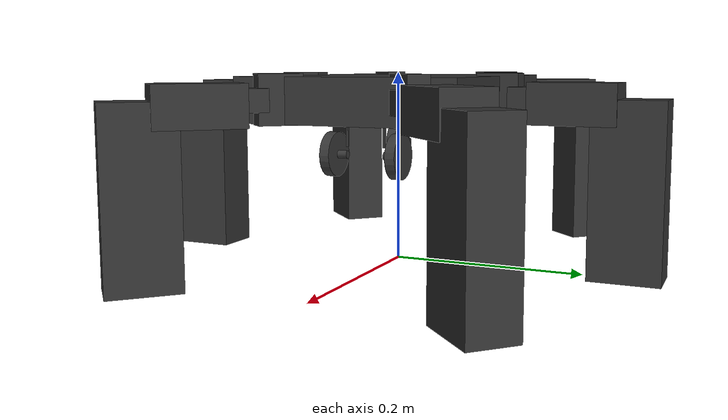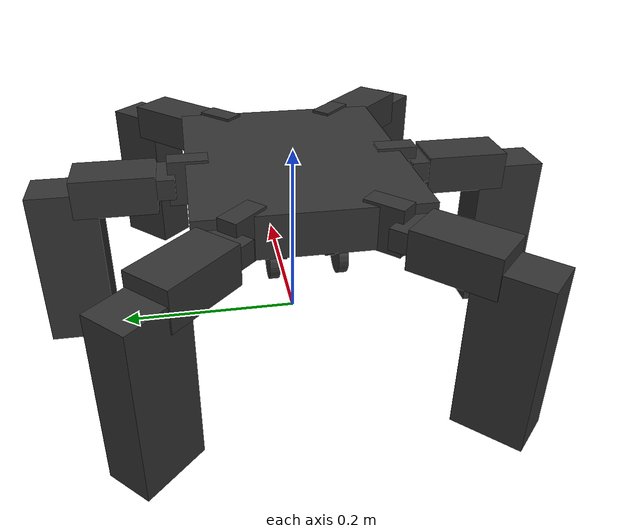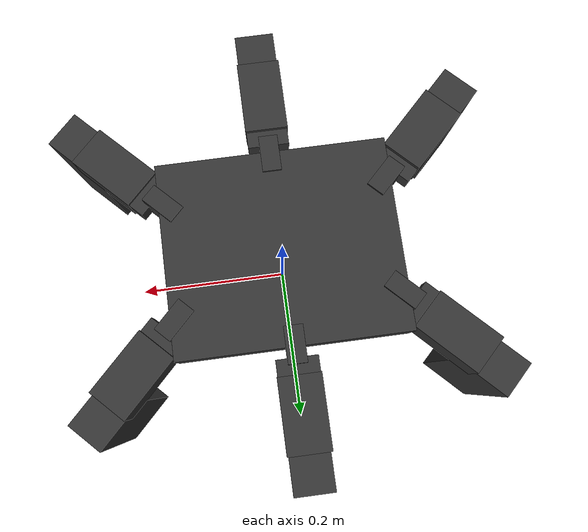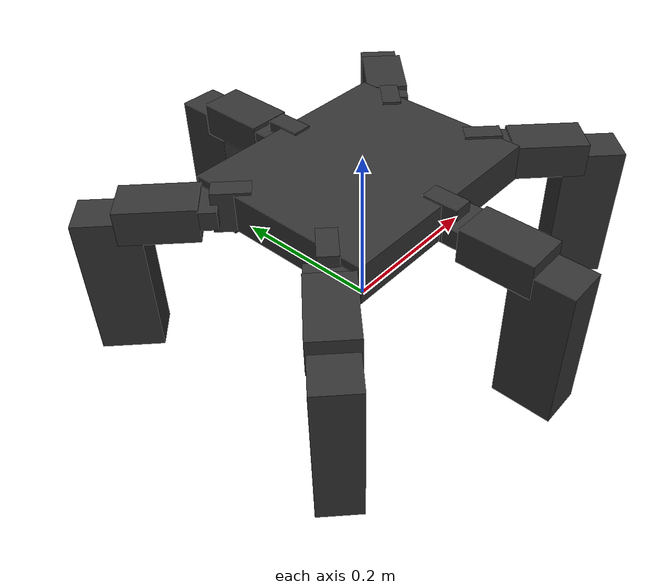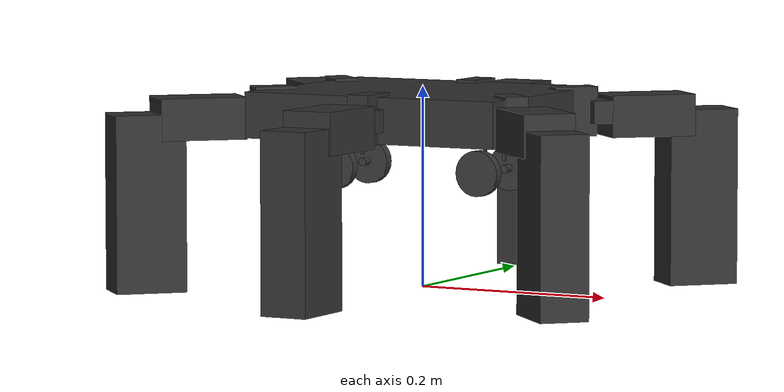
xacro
<?xml version="1.0" ?>
<robot name="PhantomX"  xmlns:xacro="http://www.ros.org/wiki/xacro">

  <xacro:include filename="./phantomx_boxes.urdf.xacro" />

  <!-- Ground projection (z=0, on the floor) -->
  <link name="base_footprint"/>

  <!-- Body base frame, raised to robot body height above ground -->
  <joint name="j_base_footprint_to_base_link" type="fixed">
    <parent link="base_footprint"/>
    <child link="base_link"/>
    <origin xyz="0 0 0.174" rpy="0 0 0" />
  </joint>
  <link name="base_link"/>

  <xacro:phantomx parent="base_link">
    <origin xyz="0 0 0" rpy="0 0 0" />
  </xacro:phantomx>

  <!-- Wheel assembly v2 - axle + tire + rim, Y=+-70mm, no comment colons -->
  <xacro:include filename="./wheel.xacro" />

</robot>

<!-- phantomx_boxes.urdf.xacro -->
<robot xmlns:xacro="http://www.ros.org/wiki/xacro">

<!-- ========== Collision box half-extents (meters) ========== -->
<xacro:property name="body_box_x" value="0.1368" />
<xacro:property name="body_box_y" value="0.1150" />
<xacro:property name="body_box_z" value="0.0228" />

<xacro:property name="coxa_box_x" value="0.0247" />
<xacro:property name="coxa_box_y" value="0.0216" />
<xacro:property name="coxa_box_z" value="0.0112" />

<xacro:property name="femur_box_x" value="0.0255" />
<xacro:property name="femur_box_y" value="0.0435" />
<xacro:property name="femur_box_z" value="0.0208" />

<xacro:property name="tibia_box_x" value="0.0240" />
<xacro:property name="tibia_box_y" value="0.0877" />
<xacro:property name="tibia_box_z" value="0.0353" />

<!-- ========== Collision box center offsets in link frame (meters) ========== -->
<!-- Body - STL center at (-0.2, 0.1, -0.6)mm ≈ (0, 0, 0) -->
<xacro:property name="body_col_ox" value="0.0" />
<xacro:property name="body_col_oy" value="0.0" />
<xacro:property name="body_col_oz" value="0.0" />

<!-- Coxa/Connect - STL center at (0.1, 16.1, -0.1)mm in STL coords
     Visual origin at (0, -0.0252, 0) maps STL→link frame
     Link-frame center ≈ (0, -0.009, 0) -->
<xacro:property name="coxa_col_ox" value="0.0" />
<xacro:property name="coxa_col_oy" value="-0.0091" />
<xacro:property name="coxa_col_oz" value="0.0" />

<!-- Femur/Thigh - STL center at (1.1, -32.0, -4.8)mm ≈ (0, -0.032, -0.005)m -->
<xacro:property name="femur_col_ox" value="0.0" />
<xacro:property name="femur_col_oy" value="-0.0320" />
<xacro:property name="femur_col_oz" value="-0.0048" />

<!-- Tibia/Foot - STL center at (-0.9, 72.9, 21.0)mm ≈ (0, 0.073, 0.021)m -->
<xacro:property name="tibia_col_ox" value="0.0" />
<xacro:property name="tibia_col_oy" value="0.0729" />
<xacro:property name="tibia_col_oz" value="0.0210" />

<!-- ========== Joint link offsets (keep original) ========== -->
<xacro:property name="connect_offset" value="0.02633" />
<xacro:property name="thigh_offset_y" value="-0.0645" />
<xacro:property name="thigh_offset_z" value="-0.0145" />

<xacro:macro name="phantomx" params="parent *origin">

  <joint name="j_phantomx_attachment" type="fixed">
    <parent link="${parent}"/>
    <child link="MP_BODY"/>
    <insert_block name="origin" />
  </joint>

  <link name="MP_BODY">
    <inertial>
      <origin xyz="${body_col_ox} ${body_col_oy} ${body_col_oz}" rpy="0 0 0" />
      <mass value="0.976" />
      <!-- Box inertia - m/12 * diag(dy²+dz², dx²+dz², dx²+dy²) -->
      <inertia ixx="0.004471" ixy="0.0" ixz="0.0"
               iyy="0.006252" iyz="0.0"
               izz="0.010386" />
    </inertial>
    <visual>
      <origin xyz="${body_col_ox} ${body_col_oy} ${body_col_oz}" rpy="0 0 0" />
      <geometry>
        <box size="${body_box_x*2} ${body_box_y*2} ${body_box_z*2}" />
      </geometry>
      <material name="Grey">
        <color rgba="0.20 0.20 0.20 1.0"/>
      </material>
    </visual>
    <collision>
      <origin xyz="${body_col_ox} ${body_col_oy} ${body_col_oz}" rpy="0 0 0" />
      <geometry>
        <box size="${body_box_x*2} ${body_box_y*2} ${body_box_z*2}" />
      </geometry>
    </collision>
  </link>

  <!-- ===== 6 LEGS ===== -->
  <!-- Right side -->
  <xacro:leg xyz="0.1248 -0.06164  0.001116"  rpy="0 4.7123 0.7853981633974483" suffix="rf"/>
  <xacro:leg xyz="0 -0.1034  0.001116"  rpy="0 4.7123 0" suffix="rm"/>
  <xacro:leg xyz="-0.1248 -0.06164  0.001116"  rpy="0 4.7123 -0.7853981633974483" suffix="rr"/>

  <!-- Left side -->
  <xacro:leg xyz="0.1248 0.06164  0.001116"  rpy="0 4.7123 2.356194490192345" suffix="lf"/>
  <xacro:leg xyz="0 0.1034  0.001116"  rpy="0 4.7123 3.14159" suffix="lm"/>
  <xacro:leg xyz="-0.1248 0.06164  0.001116"  rpy="0 4.7123 3.9269908169872414" suffix="lr"/>

</xacro:macro>

<!-- ===== SINGLE LEG MACRO =====
     Each leg - c1 (coxa) → c2 (coxa extender) → thigh (femur) → tibia (foot)
     3 revolute joints (all rotate around local X axis) + 1 fixed joint (c1→c2) -->
<xacro:macro name="leg" params="xyz rpy suffix">

  <!-- ===== c1 - Coxa bracket =====
       Box - 49.4 × 43.2 × 22.5 mm, mass 30g
       I = m/12 * diag(dy²+dz², dx²+dz², dx²+dy²) -->
  <link name="c1_${suffix}">
    <inertial>
      <origin xyz="${coxa_col_ox} ${coxa_col_oy} ${coxa_col_oz}" rpy="0 0 0" />
      <mass value="0.030" />
      <inertia ixx="0.00000593" ixy="0.0" ixz="0.0"
               iyy="0.00000737" iyz="0.0"
               izz="0.00001077" />
    </inertial>
    <visual>
      <origin xyz="${coxa_col_ox} ${coxa_col_oy} ${coxa_col_oz}" rpy="0 0 0" />
      <geometry>
        <box size="${coxa_box_x*2} ${coxa_box_y*2} ${coxa_box_z*2}" />
      </geometry>
      <material name="Grey">
        <color rgba="0.20 0.20 0.20 1.0"/>
      </material>
    </visual>
    <collision>
      <origin xyz="${coxa_col_ox} ${coxa_col_oy} ${coxa_col_oz}" rpy="0 0 0" />
      <geometry>
        <box size="${coxa_box_x*2} ${coxa_box_y*2} ${coxa_box_z*2}" />
      </geometry>
    </collision>
  </link>

  <!-- ===== c2 - Coxa extender (fixed to c1) =====
       Same geometry and mass as c1 -->
  <link name="c2_${suffix}">
    <inertial>
      <origin xyz="${coxa_col_ox} ${coxa_col_oy} ${coxa_col_oz}" rpy="0 0 0" />
      <mass value="0.030" />
      <inertia ixx="0.00000593" ixy="0.0" ixz="0.0"
               iyy="0.00000737" iyz="0.0"
               izz="0.00001077" />
    </inertial>
    <visual>
      <origin xyz="${coxa_col_ox} ${coxa_col_oy} ${coxa_col_oz}" rpy="0 0 0" />
      <geometry>
        <box size="${coxa_box_x*2} ${coxa_box_y*2} ${coxa_box_z*2}" />
      </geometry>
      <material name="Grey">
        <color rgba="0.20 0.20 0.20 1.0"/>
      </material>
    </visual>
    <collision>
      <origin xyz="${coxa_col_ox} ${coxa_col_oy} ${coxa_col_oz}" rpy="0 0 0" />
      <geometry>
        <box size="${coxa_box_x*2} ${coxa_box_y*2} ${coxa_box_z*2}" />
      </geometry>
    </collision>
  </link>

  <!-- ===== Thigh / Femur =====
       Box - 50.9 × 87.0 × 41.5 mm, mass 80g
       I = m/12 * diag(dy²+dz², dx²+dz², dx²+dy²) -->
  <link name="thigh_${suffix}">
    <inertial>
      <origin xyz="${femur_col_ox} ${femur_col_oy} ${femur_col_oz}" rpy="0 0 0" />
      <mass value="0.080" />
      <inertia ixx="0.00006194" ixy="0.0" ixz="0.0"
               iyy="0.00002875" iyz="0.0"
               izz="0.00006773" />
    </inertial>
    <visual>
      <origin xyz="${femur_col_ox} ${femur_col_oy} ${femur_col_oz}" rpy="0 0 0" />
      <geometry>
        <box size="${femur_box_x*2} ${femur_box_y*2} ${femur_box_z*2}" />
      </geometry>
      <material name="Grey">
        <color rgba="0.20 0.20 0.20 1.0"/>
      </material>
    </visual>
    <collision>
      <origin xyz="${femur_col_ox} ${femur_col_oy} ${femur_col_oz}" rpy="0 0 0" />
      <geometry>
        <box size="${femur_box_x*2} ${femur_box_y*2} ${femur_box_z*2}" />
      </geometry>
    </collision>
  </link>

  <!-- ===== Tibia / Foot =====
       Box - 48.0 × 175.4 × 70.6 mm, mass 100g
       I = m/12 * diag(dy²+dz², dx²+dz², dx²+dy²) -->
  <link name="tibia_${suffix}">
    <inertial>
      <origin xyz="${tibia_col_ox} ${tibia_col_oy} ${tibia_col_oz}" rpy="0 0 0" />
      <mass value="0.100" />
      <inertia ixx="0.00029791" ixy="0.0" ixz="0.0"
               iyy="0.00006074" iyz="0.0"
               izz="0.00027558" />
    </inertial>
    <visual>
      <origin xyz="${tibia_col_ox} ${tibia_col_oy} ${tibia_col_oz}" rpy="0 0 0" />
      <geometry>
        <box size="${tibia_box_x*2} ${tibia_box_y*2} ${tibia_box_z*2}" />
      </geometry>
      <material name="Grey">
        <color rgba="0.20 0.20 0.20 1.0"/>
      </material>
    </visual>
    <collision>
      <origin xyz="${tibia_col_ox} ${tibia_col_oy} ${tibia_col_oz}" rpy="0 0 0" />
      <geometry>
        <box size="${tibia_box_x*2} ${tibia_box_y*2} ${tibia_box_z*2}" />
      </geometry>
    </collision>
  </link>

  <!-- ===== JOINTS ===== -->
  <!-- j_c1 - body → coxa (revolute around X) -->
  <joint name="j_c1_${suffix}" type="revolute">
    <parent link="MP_BODY"/>
    <child link="c1_${suffix}"/>
    <origin xyz="${xyz}" rpy="${rpy}" />
    <axis xyz="1 0 0" />
    <limit effort="2.8" velocity="5.6548668" lower="-2.6179939" upper="2.6179939" />
  </joint>

  <!-- j_c2 - c1 → c2 (fixed, 54mm offset along -Y) -->
  <joint name="j_c2_${suffix}" type="fixed">
    <parent link="c1_${suffix}"/>
    <child link="c2_${suffix}"/>
    <origin xyz="0 -0.054 0" rpy="0 1.5704 3.14159" />
  </joint>

  <!-- j_thigh - c2 → thigh (revolute around X, knee joint) -->
  <joint name="j_thigh_${suffix}" type="revolute">
    <parent link="c2_${suffix}"/>
    <child link="thigh_${suffix}"/>
    <origin xyz="0 0 0" rpy="0 3.14159 3.14159" />
    <axis xyz="1 0 0" />
    <limit effort="2.8" velocity="5.6548668" lower="-2.6179939" upper="2.6179939" />
  </joint>

  <!-- j_tibia - thigh → tibia (revolute around X, ankle joint) -->
  <joint name="j_tibia_${suffix}" type="revolute">
    <parent link="thigh_${suffix}"/>
    <child link="tibia_${suffix}"/>
    <origin xyz="0 ${thigh_offset_y} ${thigh_offset_z}" rpy="-1.5707 0 3.14159" />
    <axis xyz="1 0 0" />
    <limit effort="2.8" velocity="5.6548668" lower="-2.6179939" upper="2.6179939" />
  </joint>

</xacro:macro>
</robot>

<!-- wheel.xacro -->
<robot xmlns:xacro="http://www.ros.org/wiki/xacro">

<xacro:property name="wheel_radius" value="0.0225" />
<xacro:property name="tire_width" value="0.010" />
<xacro:property name="body_bottom_z" value="-0.0234" />
<xacro:property name="wheel_axle_z" value="-0.0548" />
<xacro:property name="bracket_z" value="0.025" />             <!-- halved -->
<xacro:property name="bracket_collision_z" value="0.006" />
<xacro:property name="bracket_wx" value="0.003" />
<xacro:property name="bracket_wy" value="0.002" />
<xacro:property name="axle_gap" value="0.015" />              <!-- closer to body -->
<xacro:property name="axle_radius" value="0.004" />
<xacro:property name="bracket_mass" value="0.015" />

<xacro:property name="wheel_x_rear" value="-0.080" />
<xacro:property name="wheel_x_front" value="0.080" />
<xacro:property name="wheel_y" value="0.035" />
<xacro:property name="bracket_y" value="0.020" />

<xacro:property name="wheel_total_Ixx" value="0.00000324" />
<xacro:property name="wheel_total_Iyy" value="0.00000605" />
<xacro:property name="wheel_total_Izz" value="0.00000324" />

<!-- Bracket inertia: box 10×5×51mm, 22g -->
<xacro:property name="bracket_Ixx" value="0.00000481" />
<xacro:property name="bracket_Iyy" value="0.00000495" />
<xacro:property name="bracket_Izz" value="0.00000023" />

<!-- Bracket center: top fixed, bottom 5mm below axle -->
<xacro:property name="bracket_center_z" value="${wheel_axle_z + 0.0205}" />

<xacro:property name="PI" value="3.14159265359" />

<!-- ===== Axle + Wheel assembly macro ===== -->
<xacro:macro name="wheel_assembly" params="suffix x y_sign effort velocity">

  <!-- Bracket + axle mount, fixed to base_link -->
  <link name="mount_${suffix}">
    <inertial>
      <origin xyz="0 0 0" rpy="0 0 0" />
      <mass value="${bracket_mass}" />
      <inertia ixx="${bracket_Ixx}" ixy="0.0" ixz="0.0"
               iyy="${bracket_Iyy}" iyz="0.0"
               izz="${bracket_Izz}" />
    </inertial>
    <!-- Bracket - vertical plate, top at body bottom, 36mm tall -->
    <visual>
      <origin xyz="0 0 0" rpy="0 0 0" />
      <geometry>
        <box size="${bracket_wx} ${bracket_wy} ${bracket_z}" />
      </geometry>
      <material name="MountColor"><color rgba="0.22 0.22 0.22 1.0"/></material>
    </visual>
    <!-- Axle connector - cylinder from bracket to wheel hub -->
    <visual>
      <origin xyz="0 ${y_sign * axle_gap/2} ${wheel_axle_z - bracket_center_z}" rpy="${PI/2} 0 0" />
      <geometry>
        <cylinder radius="${axle_radius}" length="${axle_gap}" />
      </geometry>
      <material name="MountColor"><color rgba="0.22 0.22 0.22 1.0"/></material>
    </visual>
    <collision>
      <origin xyz="0 0 0" rpy="0 0 0" />
      <geometry>
        <box size="${bracket_wx} ${bracket_wy} ${bracket_collision_z}" />
      </geometry>
    </collision>
  </link>

  <joint name="j_mount_${suffix}" type="fixed">
    <parent link="base_link"/>
    <child link="mount_${suffix}"/>
    <origin xyz="${x} ${y_sign * bracket_y} ${bracket_center_z}" rpy="0 0 0" />
  </joint>

  <!-- Wheel attached at end of axle connector -->
  <link name="wheel_${suffix}">
    <inertial>
      <origin xyz="0 0 0" rpy="0 0 0" />
      <mass value="0.035" />
      <inertia ixx="${wheel_total_Ixx}" ixy="0.0" ixz="0.0"
               iyy="${wheel_total_Iyy}" iyz="0.0"
               izz="${wheel_total_Izz}" />
    </inertial>
    <!-- Detailed wheel mesh (tire + rim + spokes) -->
    <visual>
      <origin xyz="0 0 0" rpy="${PI/2} 0 0" />
      <geometry>
        <cylinder radius="0.0225" length="0.010"/>
      </geometry>
      <material name="WheelGray">
        <color rgba="0.22 0.22 0.22 1.0" />
      </material>
    </visual>
    <!-- Collision - single cylinder matching tire outer -->
    <collision>
      <origin xyz="0 0 0" rpy="${PI/2} 0 0" />
      <geometry><cylinder radius="${wheel_radius}" length="${tire_width}" /></geometry>
    </collision>
  </link>

  <!-- Wheel rotates at end of axle connector -->
  <joint name="j_wheel_${suffix}" type="continuous">
    <parent link="mount_${suffix}"/>
    <child link="wheel_${suffix}"/>
    <origin xyz="0 ${y_sign * axle_gap} ${wheel_axle_z - bracket_center_z}" rpy="0 0 0" />
    <axis xyz="0 1 0" />
    <limit effort="${effort}" velocity="100.0" />
    <dynamics damping="0.1" friction="0.05" />
  </joint>

</xacro:macro>

<!-- ===== Instantiate 4 wheels ===== -->

<!-- Rear-left -->
<xacro:wheel_assembly suffix="rear_left" x="${wheel_x_rear}" y_sign="1"
    effort="5.0" velocity="100.0" />

<!-- Rear-right -->
<xacro:wheel_assembly suffix="rear_right" x="${wheel_x_rear}" y_sign="-1"
    effort="5.0" velocity="100.0" />

<!-- Front-left -->
<xacro:wheel_assembly suffix="front_left" x="${wheel_x_front}" y_sign="1"
    effort="5.0" velocity="100.0" />

<!-- Front-right -->
<xacro:wheel_assembly suffix="front_right" x="${wheel_x_front}" y_sign="-1"
    effort="5.0" velocity="100.0" />

</robot>
